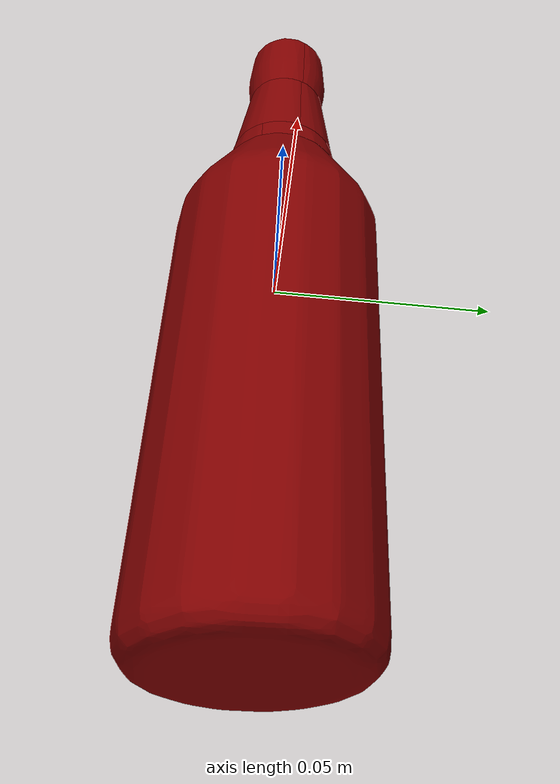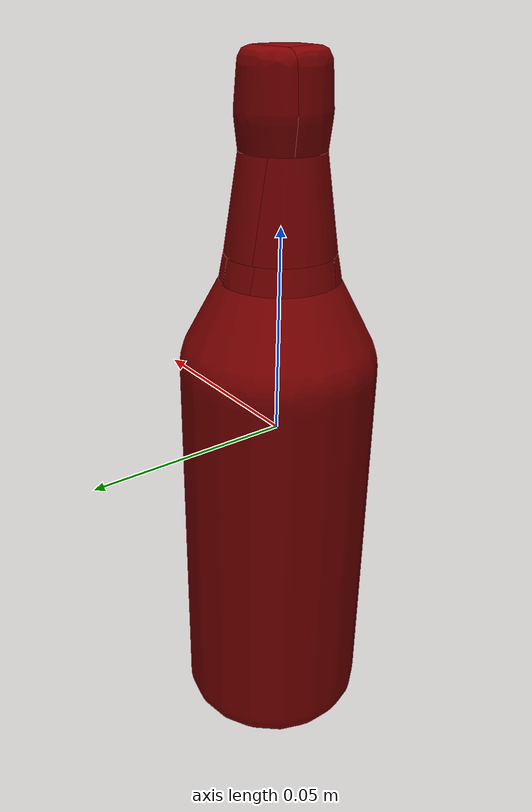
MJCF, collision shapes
<?xml version='1.0' encoding='utf-8'?>
<mujoco model="beer_18">
  <asset>
    <mesh file="visual/model_normalized_0.obj" name="model_normalized_0_vis" scale="0.16999999999999993 0.16999999999999993 0.16999999999999993" refquat="1.0 0.0 0.0 0.0" />
    <texture type="2d" name="image0" file="visual/image0.png" />
    <material name="material.029" texture="image0" specular="0.5" shininess="0.25" />
    <mesh file="collision/collision_mesh_collision_0.obj" name="beer_collision_mesh_0" scale="0.16999999999999993 0.16999999999999993 0.16999999999999993" refquat="1.0 0.0 0.0 0.0" />
    <mesh file="collision/collision_mesh_collision_1.obj" name="beer_collision_mesh_1" scale="0.16999999999999993 0.16999999999999993 0.16999999999999993" refquat="1.0 0.0 0.0 0.0" />
    <mesh file="collision/collision_mesh_collision_2.obj" name="beer_collision_mesh_2" scale="0.16999999999999993 0.16999999999999993 0.16999999999999993" refquat="1.0 0.0 0.0 0.0" />
    <mesh file="collision/collision_mesh_collision_3.obj" name="beer_collision_mesh_3" scale="0.16999999999999993 0.16999999999999993 0.16999999999999993" refquat="1.0 0.0 0.0 0.0" />
    <mesh file="collision/collision_mesh_collision_4.obj" name="beer_collision_mesh_4" scale="0.16999999999999993 0.16999999999999993 0.16999999999999993" refquat="1.0 0.0 0.0 0.0" />
    <mesh file="collision/collision_mesh_collision_5.obj" name="beer_collision_mesh_5" scale="0.16999999999999993 0.16999999999999993 0.16999999999999993" refquat="1.0 0.0 0.0 0.0" />
    <mesh file="collision/collision_mesh_collision_6.obj" name="beer_collision_mesh_6" scale="0.16999999999999993 0.16999999999999993 0.16999999999999993" refquat="1.0 0.0 0.0 0.0" />
    <mesh file="collision/collision_mesh_collision_7.obj" name="beer_collision_mesh_7" scale="0.16999999999999993 0.16999999999999993 0.16999999999999993" refquat="1.0 0.0 0.0 0.0" />
    <mesh file="collision/collision_mesh_collision_8.obj" name="beer_collision_mesh_8" scale="0.16999999999999993 0.16999999999999993 0.16999999999999993" refquat="1.0 0.0 0.0 0.0" />
    <mesh file="collision/collision_mesh_collision_9.obj" name="beer_collision_mesh_9" scale="0.16999999999999993 0.16999999999999993 0.16999999999999993" refquat="1.0 0.0 0.0 0.0" />
    <mesh file="collision/collision_mesh_collision_10.obj" name="beer_collision_mesh_10" scale="0.16999999999999993 0.16999999999999993 0.16999999999999993" refquat="1.0 0.0 0.0 0.0" />
    <mesh file="collision/collision_mesh_collision_11.obj" name="beer_collision_mesh_11" scale="0.16999999999999993 0.16999999999999993 0.16999999999999993" refquat="1.0 0.0 0.0 0.0" />
  </asset>
  <default>
    <default class="region">
      <geom group="1" conaffinity="0" contype="0" rgba="0 1 0 0" />
    </default>
    <default class="collision">
      <geom group="0" rgba="0.5 0 0 0.5" density="1000.0" />
    </default>
  </default>
  <worldbody>
    <body>
      <body name="object">
        <geom solimp="0.998 0.998 0.001" solref="0.001 1" density="100" friction="0.95 0.3 0.1" type="mesh" mesh="model_normalized_0_vis" conaffinity="0" contype="0" group="1" material="material.029" />
        <geom class="region" name="reg_bbox" type="box" pos="0.0 0.0 -9.056155000000283e-05" size="0.02411185649999999 0.024322010499999987 0.08584444184999998" />
        <geom mesh="beer_collision_mesh_0" type="mesh" class="collision" />
        <geom mesh="beer_collision_mesh_1" type="mesh" class="collision" />
        <geom mesh="beer_collision_mesh_2" type="mesh" class="collision" />
        <geom mesh="beer_collision_mesh_3" type="mesh" class="collision" />
        <geom mesh="beer_collision_mesh_4" type="mesh" class="collision" />
        <geom mesh="beer_collision_mesh_5" type="mesh" class="collision" />
        <geom mesh="beer_collision_mesh_6" type="mesh" class="collision" />
        <geom mesh="beer_collision_mesh_7" type="mesh" class="collision" />
        <geom mesh="beer_collision_mesh_8" type="mesh" class="collision" />
        <geom mesh="beer_collision_mesh_9" type="mesh" class="collision" />
        <geom mesh="beer_collision_mesh_10" type="mesh" class="collision" />
        <geom mesh="beer_collision_mesh_11" type="mesh" class="collision" />
      </body>
    <site rgba="0 0 0 0" size="0.005" pos="0 0 -0.085935003" name="bottom_site" /><site rgba="0 0 0 0" size="0.005" pos="0 0 0.08575388" name="top_site" /><site rgba="0 0 0 0" size="0.005" pos="0.02432201 0.02432201 0" name="horizontal_radius_site" /></body>
  </worldbody>
</mujoco>
